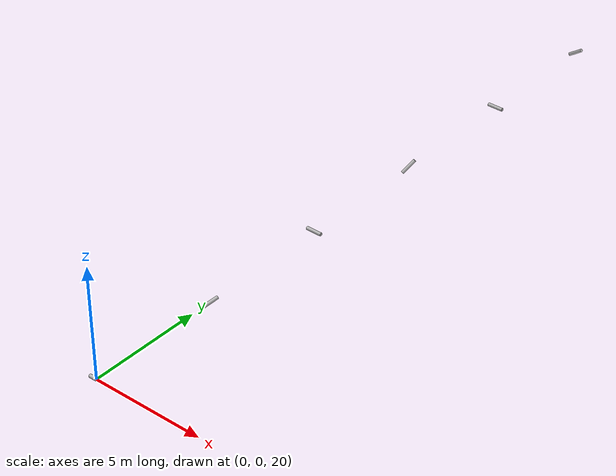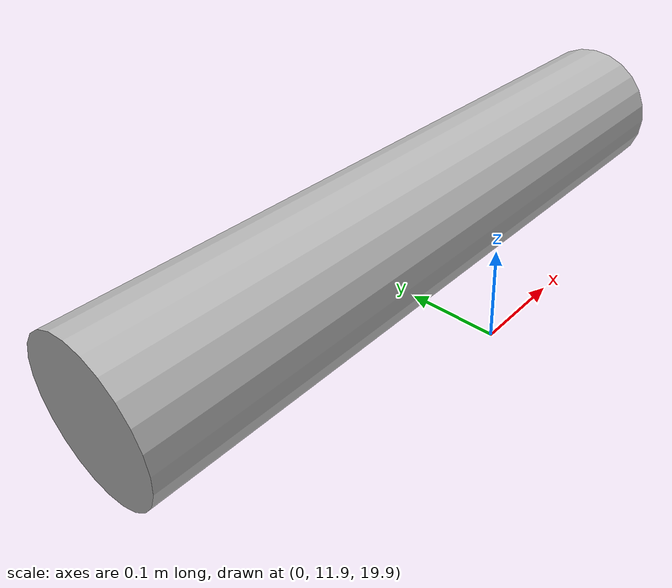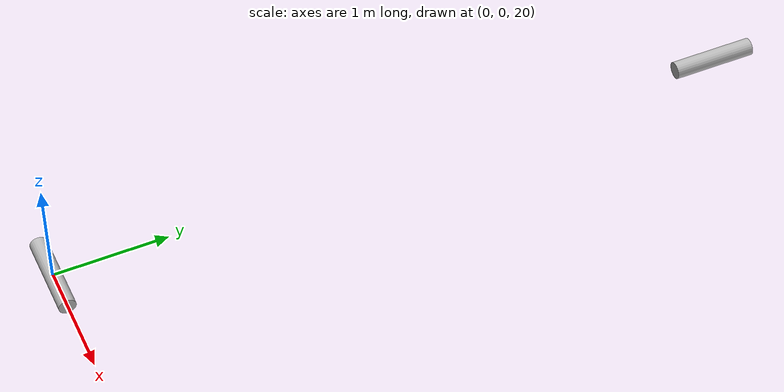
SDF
<?xml version="1.0" ?>
<!-- 자동 생성: gz_aero/tools/gen_gz_test_world.py — 직접 고치지 마세요 -->
<sdf version="1.9">
  <world name="aero_frame_check">
    <!-- 중력 0: 공력만 남긴다. 중력이 있으면 자세가 빨리 무너져 관측 구간이 짧다 -->
    <gravity>0 0 0</gravity>
    <physics name="1ms" type="ignored">
      <max_step_size>0.001</max_step_size>
      <real_time_factor>0</real_time_factor>
    </physics>
    <plugin filename="gz-sim-physics-system"
            name="gz::sim::systems::Physics"/>
    <plugin filename="gz-sim-user-commands-system"
            name="gz::sim::systems::UserCommands"/>
    <plugin filename="gz-sim-scene-broadcaster-system"
            name="gz::sim::systems::SceneBroadcaster"/>

    <model name="p0_east">
      <pose>0 0 20 0 0 0</pose>
      <link name="body">
        <inertial>
          <pose>0 0 0 0 0 0</pose>
          <mass>1.660778087</mass>
          <inertia>
            <ixx>0.00604071</ixx><iyy>0.04045326</iyy><izz>0.04045326</izz>
            <ixy>0</ixy><ixz>0</ixz><iyz>0</iyz>
          </inertia>
        </inertial>
        <visual name="hull">
          <pose>0 0 0 0 1.5707963267948966 0</pose>
          <geometry><cylinder><radius>0.075</radius>
            <length>0.72</length></cylinder></geometry>
        </visual>
      </link>
      <plugin filename="FastDroneAero" name="fast_drone::AeroPlugin">
        <link_name>body</link_name>
        <csv_file>/Users/kj/Desktop/dynamic/fast_drone/gz_aero/data/aero_placeholder.csv</csv_file>
        <nose>1 0 0</nose>
        <right>0 -1 0</right>
        <wind>0 0 0</wind>
        <test_velocity_world>60 0 0</test_velocity_world>
        <test_omega_world>0 0 0</test_omega_world>
        <debug_csv>/tmp/fast_drone_aero/p0_east.csv</debug_csv>
        <debug_csv_every>5</debug_csv_every>
      </plugin>
    </model>

    <model name="p1_yaw90">
      <pose>0 6 20 0 0 1.57079633</pose>
      <link name="body">
        <inertial>
          <pose>0 0 0 0 0 0</pose>
          <mass>1.660778087</mass>
          <inertia>
            <ixx>0.00604071</ixx><iyy>0.04045326</iyy><izz>0.04045326</izz>
            <ixy>0</ixy><ixz>0</ixz><iyz>0</iyz>
          </inertia>
        </inertial>
        <visual name="hull">
          <pose>0 0 0 0 1.5707963267948966 0</pose>
          <geometry><cylinder><radius>0.075</radius>
            <length>0.72</length></cylinder></geometry>
        </visual>
      </link>
      <plugin filename="FastDroneAero" name="fast_drone::AeroPlugin">
        <link_name>body</link_name>
        <csv_file>/Users/kj/Desktop/dynamic/fast_drone/gz_aero/data/aero_placeholder.csv</csv_file>
        <nose>1 0 0</nose>
        <right>0 -1 0</right>
        <wind>0 0 0</wind>
        <test_velocity_world>60 0 0</test_velocity_world>
        <test_omega_world>0 0 0</test_omega_world>
        <debug_csv>/tmp/fast_drone_aero/p1_yaw90.csv</debug_csv>
        <debug_csv_every>5</debug_csv_every>
      </plugin>
    </model>

    <model name="p2_roll90">
      <pose>0 12 20 1.57079633 0 0</pose>
      <link name="body">
        <inertial>
          <pose>0 0 0 0 0 0</pose>
          <mass>1.660778087</mass>
          <inertia>
            <ixx>0.00604071</ixx><iyy>0.04045326</iyy><izz>0.04045326</izz>
            <ixy>0</ixy><ixz>0</ixz><iyz>0</iyz>
          </inertia>
        </inertial>
        <visual name="hull">
          <pose>0 0 0 0 1.5707963267948966 0</pose>
          <geometry><cylinder><radius>0.075</radius>
            <length>0.72</length></cylinder></geometry>
        </visual>
      </link>
      <plugin filename="FastDroneAero" name="fast_drone::AeroPlugin">
        <link_name>body</link_name>
        <csv_file>/Users/kj/Desktop/dynamic/fast_drone/gz_aero/data/aero_placeholder.csv</csv_file>
        <nose>1 0 0</nose>
        <right>0 -1 0</right>
        <wind>0 0 0</wind>
        <test_velocity_world>0 0 -30</test_velocity_world>
        <test_omega_world>0 0 2</test_omega_world>
        <debug_csv>/tmp/fast_drone_aero/p2_roll90.csv</debug_csv>
        <debug_csv_every>5</debug_csv_every>
      </plugin>
    </model>

    <model name="p3_asym">
      <pose>0 18 20 0.3 -0.7 1.1</pose>
      <link name="body">
        <inertial>
          <pose>0 0 0 0 0 0</pose>
          <mass>1.660778087</mass>
          <inertia>
            <ixx>0.00604071</ixx><iyy>0.04045326</iyy><izz>0.04045326</izz>
            <ixy>0</ixy><ixz>0</ixz><iyz>0</iyz>
          </inertia>
        </inertial>
        <visual name="hull">
          <pose>0 0 0 0 1.5707963267948966 0</pose>
          <geometry><cylinder><radius>0.075</radius>
            <length>0.72</length></cylinder></geometry>
        </visual>
      </link>
      <plugin filename="FastDroneAero" name="fast_drone::AeroPlugin">
        <link_name>body</link_name>
        <csv_file>/Users/kj/Desktop/dynamic/fast_drone/gz_aero/data/aero_placeholder.csv</csv_file>
        <nose>1 0 0</nose>
        <right>0 -1 0</right>
        <wind>0 0 0</wind>
        <test_velocity_world>40 15 -8</test_velocity_world>
        <test_omega_world>0.5 -1.2 0.8</test_omega_world>
        <debug_csv>/tmp/fast_drone_aero/p3_asym.csv</debug_csv>
        <debug_csv_every>5</debug_csv_every>
      </plugin>
    </model>

    <model name="p4_wind">
      <pose>0 24 20 0 0 0</pose>
      <link name="body">
        <inertial>
          <pose>0 0 0 0 0 0</pose>
          <mass>1.660778087</mass>
          <inertia>
            <ixx>0.00604071</ixx><iyy>0.04045326</iyy><izz>0.04045326</izz>
            <ixy>0</ixy><ixz>0</ixz><iyz>0</iyz>
          </inertia>
        </inertial>
        <visual name="hull">
          <pose>0 0 0 0 1.5707963267948966 0</pose>
          <geometry><cylinder><radius>0.075</radius>
            <length>0.72</length></cylinder></geometry>
        </visual>
      </link>
      <plugin filename="FastDroneAero" name="fast_drone::AeroPlugin">
        <link_name>body</link_name>
        <csv_file>/Users/kj/Desktop/dynamic/fast_drone/gz_aero/data/aero_placeholder.csv</csv_file>
        <nose>1 0 0</nose>
        <right>0 -1 0</right>
        <wind>0 25 0</wind>
        <test_velocity_world>0 0 0</test_velocity_world>
        <test_omega_world>0 0 0</test_omega_world>
        <debug_csv>/tmp/fast_drone_aero/p4_wind.csv</debug_csv>
        <debug_csv_every>5</debug_csv_every>
      </plugin>
    </model>

    <model name="p5_highalpha">
      <pose>0 30 20 0 -0.6 0</pose>
      <link name="body">
        <inertial>
          <pose>0 0 0 0 0 0</pose>
          <mass>1.660778087</mass>
          <inertia>
            <ixx>0.00604071</ixx><iyy>0.04045326</iyy><izz>0.04045326</izz>
            <ixy>0</ixy><ixz>0</ixz><iyz>0</iyz>
          </inertia>
        </inertial>
        <visual name="hull">
          <pose>0 0 0 0 1.5707963267948966 0</pose>
          <geometry><cylinder><radius>0.075</radius>
            <length>0.72</length></cylinder></geometry>
        </visual>
      </link>
      <plugin filename="FastDroneAero" name="fast_drone::AeroPlugin">
        <link_name>body</link_name>
        <csv_file>/Users/kj/Desktop/dynamic/fast_drone/gz_aero/data/aero_placeholder.csv</csv_file>
        <nose>1 0 0</nose>
        <right>0 -1 0</right>
        <wind>0 0 0</wind>
        <test_velocity_world>83.3 0 0</test_velocity_world>
        <test_omega_world>0 0 0</test_omega_world>
        <debug_csv>/tmp/fast_drone_aero/p5_highalpha.csv</debug_csv>
        <debug_csv_every>5</debug_csv_every>
      </plugin>
    </model>

  </world>
</sdf>
